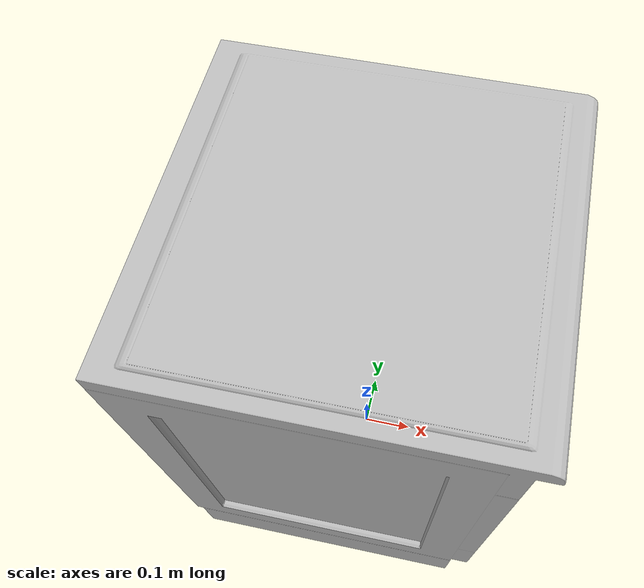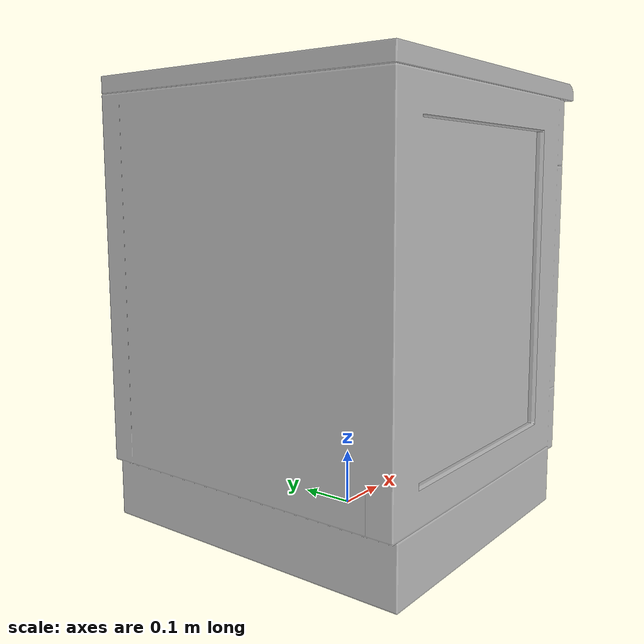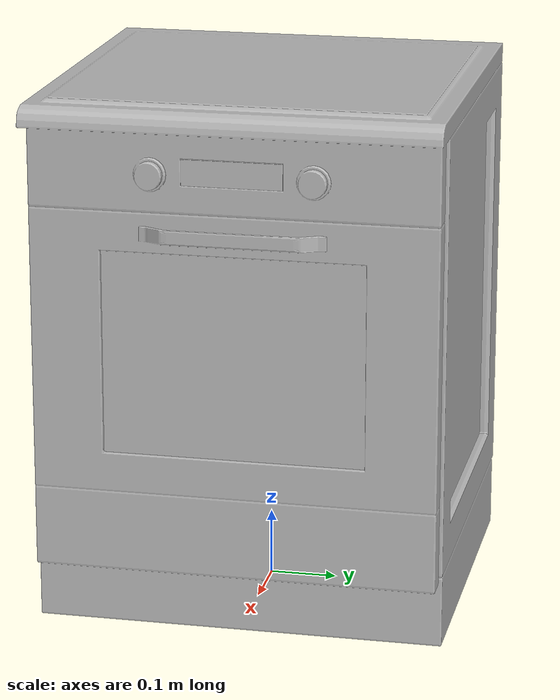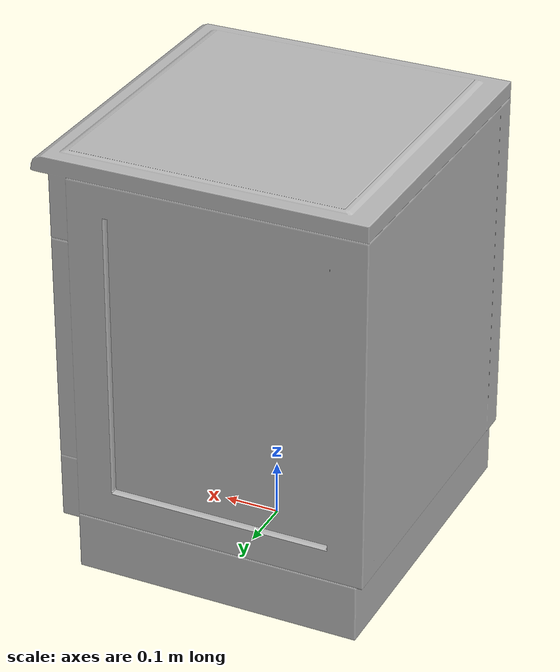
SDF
<?xml version='1.0'?>
<sdf version='1.4'>
  <model name='101'>
    <pose>0 0 0 0 0 0</pose>
    <static>true</static>
    <link name='link'>
      <collision name='collision'>
        <pose>0 0 0 0 0 0</pose>
        <geometry>
          <box>
            <size>0.600001 0.600354 2</size>
          </box>
        </geometry>
      </collision>
      <visual name='visual'>
        <pose>0 0 0 0 0 0</pose>
        <geometry>
          <mesh><uri>model://101/101.dae</uri></mesh>
        </geometry>
      </visual>
    </link>
  </model>
</sdf>
